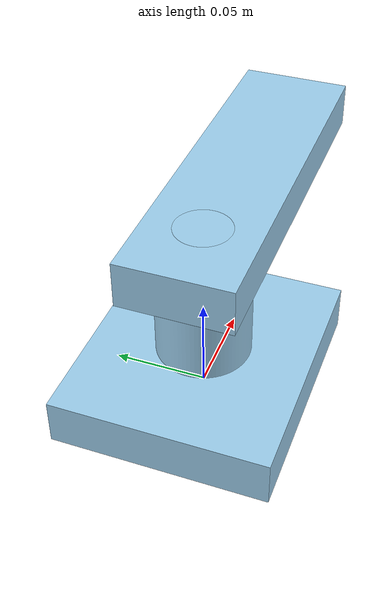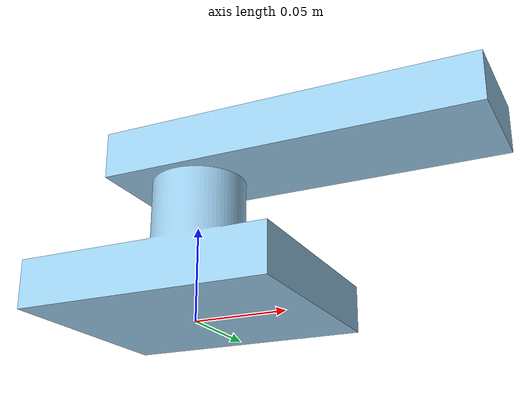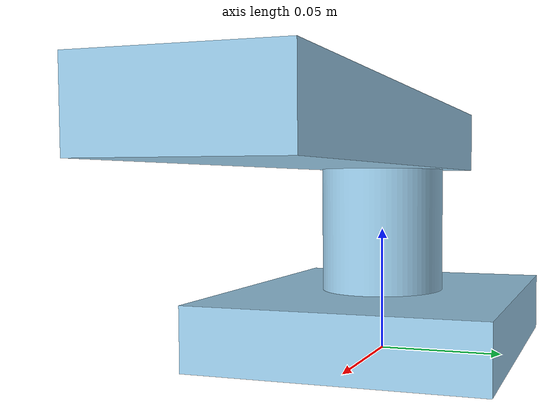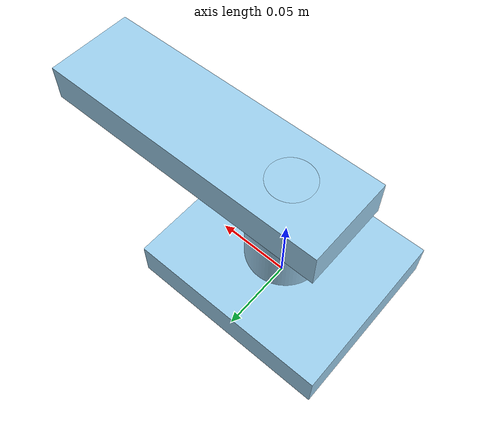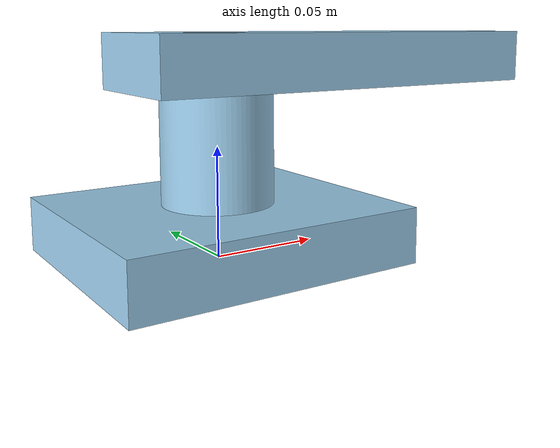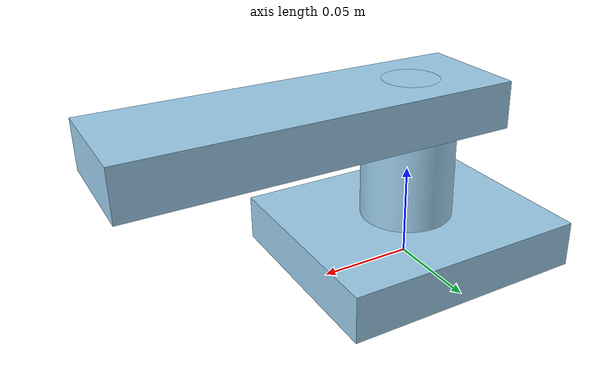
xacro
<?xml version="1.0"?>
<robot name="os_robots" xmlns:xacro="http://ros.org/wiki/xacro">

  <link name="base_footprint">
    <visual>
        <origin xyz="0 -9.18485e-19 -0.1" rpy="0 -0 0"/>
        <geometry>
            <box size="0.001 0.001 0.001" />
        </geometry>
    </visual>
  </link>

  <joint name="base_footprint_joint" type="fixed">
    <origin xyz="0 0 0" rpy="0 0 0" />
    <parent link="base_footprint"/>
    <child link="base" />
  </joint>

   <link name="base">
    <visual>
        <origin xyz="0 -9.18485e-19 -0.1" rpy="0 -0 0" />
    <geometry>
        <mesh filename="package://os_robots_description/meshes/base.stl"/>
    </geometry>
    <material name="base_material">
        <color rgba="0.615686 0.811765 0.929412 1.0"/>
    </material>
    </visual>
    <collision>
        <origin xyz="0 -9.18485e-19 -0.1" rpy="0 -0 0" />
        <geometry>
            <mesh filename="package://os_robots_description/meshes/base.stl"/>
        </geometry>
        <material name="base_material">
            <color rgba="0.615686 0.811765 0.929412 1.0"/>
        </material>
    </collision>
    <inertial>
        <origin xyz="7.89552e-05 9.80263e-05 -0.0773827" rpy="0 0 0"/>
        <mass value="1.3362" />
        <inertia ixx="0.0017681" ixy="-3.16074e-09"  ixz="1.06737e-06" iyy="0.00216765" iyz="1.32518e-06" izz="0.00270499" />
    </inertial>
    </link>

    <link name="link1">

    <visual>
        <origin xyz="0.06 0 0.075" rpy="0 -0 0" />
        <geometry>
            <mesh filename="package://os_robots_description/meshes/link1.stl"/>
        </geometry>
        <material name="link1_material">
            <color rgba="0.615686 0.811765 0.929412 1.0"/>
        </material>
    </visual>
    <collision>
        <origin xyz="0.06 0 0.075" rpy="0 -0 0" />
        <geometry>
            <mesh filename="package://os_robots_description/meshes/link1.stl"/>
        </geometry>
        <material name="link1_material">
            <color rgba="0.615686 0.811765 0.929412 1.0"/>
        </material>
    </collision>

    <inertial>
        <origin xyz="0.0637555 2.79987e-18 0.0875" rpy="0 0 0"/>
        <mass value="0.762287" />
        <inertia ixx="0.000280019" ixy="0"  ixz="0" iyy="0.0025545" iyz="0" izz="0.00275511" />
    </inertial>

    </link>

    <joint name="base" type="revolute">
    <origin xyz="0 9.18485e-19 0.1" rpy="0 -0 0" />
    <parent link="link1" />
    <child link="base_footprint" />
    <axis xyz="0 0 1"/>
    <limit effort="1" velocity="20" lower="0" upper="3.14159"/>
    <joint_properties friction="0.0"/>
    </joint>

</robot>
